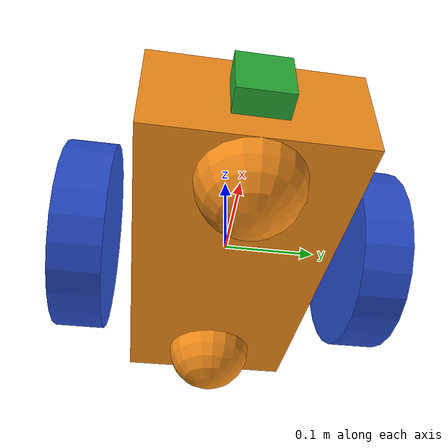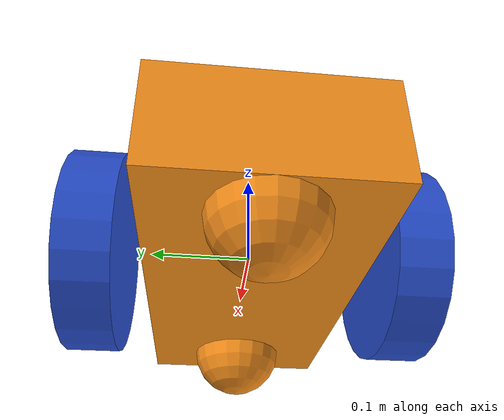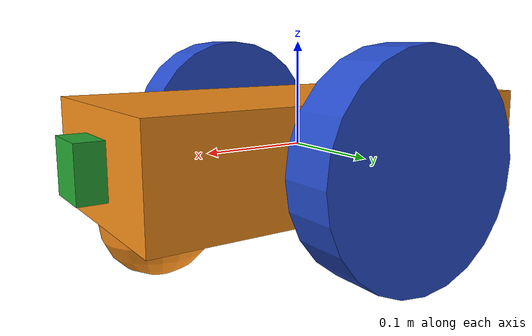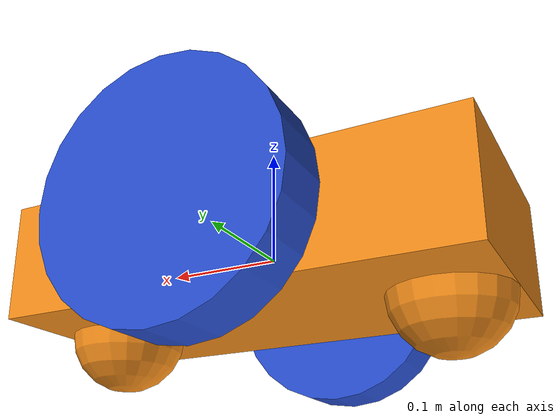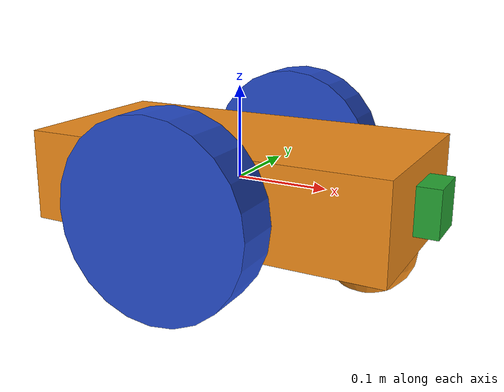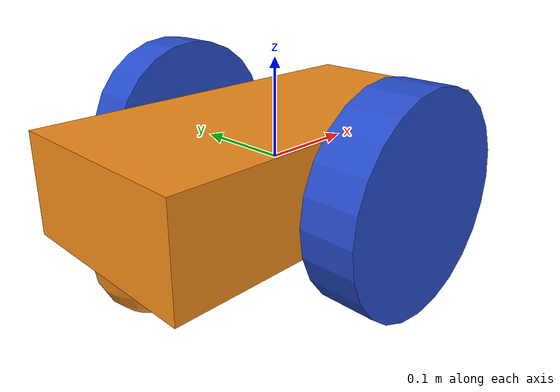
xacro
<?xml version="1.0" ?>
<robot name="zeus" xmlns:xacro="http://www.ros.org/wiki/xacro">

  <!-- Size of square 'camera' box -->
  <xacro:property name="cameraSize" value="0.05"/>
  <xacro:property name="cameraMass" value="0.1"/>

  <!-- Import files -->
  <xacro:include filename="$(find zeus_description)/urdf/materials.xacro" />
  <xacro:include filename="$(find zeus_description)/urdf/macros.xacro" />
  <xacro:include filename="$(find zeus_description)/urdf/zeus.gazebo" />

  <link name='chassis'>
    <pose>0 0 0.1 0 0 0</pose>

    <inertial>
      <mass value="15.0"/>
      <origin xyz="0.0 0 0.1" rpy=" 0 0 0"/>
      <inertia
          ixx="0.1" ixy="0" ixz="0"
          iyy="0.1" iyz="0"
          izz="0.1"
      />
    </inertial>

    <collision name='collision'>
      <geometry>
        <box size=".4 .2 .1"/>
      </geometry>
    </collision>

    <visual name='chassis_visual'>
      <origin xyz="0 0 0" rpy=" 0 0 0"/>
      <geometry>
        <box size=".4 .2 .1"/>
      </geometry>
    </visual>

    <collision name='caster_collision'>
      <origin xyz="-0.15 0 -0.05" rpy=" 0 0 0"/>
      <geometry>
        <sphere radius="0.05"/>
      </geometry>
      <surface>
        <friction>
          <ode>
            <mu>0</mu>
            <mu2>0</mu2>
            <slip1>1.0</slip1>
            <slip2>1.0</slip2>
          </ode>
        </friction>
      </surface>
    </collision>

    <visual name='caster_visual'>
      <origin xyz="-0.15 0 -0.05" rpy=" 0 0 0"/>
      <geometry>
        <sphere radius="0.05"/>
      </geometry>
    </visual>

    <collision name='caster_front_collision'>
      <origin xyz="0.15 0 -0.05" rpy=" 0 0 0"/>
      <geometry>
        <sphere radius="0.05"/>
      </geometry>
      <surface>
        <friction>
          <ode>
            <mu>0</mu>
            <mu2>0</mu2>
            <slip1>1.0</slip1>
            <slip2>1.0</slip2>
          </ode>
        </friction>
      </surface>
    </collision>

    <visual name='caster_front_visual'>
      <origin xyz="0.15 0 -0.05" rpy=" 0 0 0"/>
      <geometry>
        <sphere radius="0.05"/>
      </geometry>
    </visual>

  </link>

  <link name="left_wheel">
    <!--origin xyz="0.1 0.13 0.1" rpy="0 1.5707 1.5707"/-->
    <collision name="collision">
      <origin xyz="0 0 0" rpy="0 1.5707 1.5707"/>
      <geometry>
        <cylinder radius="0.1" length="0.05"/>
      </geometry>
    </collision>
    <visual name="left_wheel_visual">
      <origin xyz="0 0 0" rpy="0 1.5707 1.5707"/>
      <geometry>
        <cylinder radius="0.1" length="0.05"/>
      </geometry>
    </visual>
    <inertial>
      <origin xyz="0 0 0" rpy="0 1.5707 1.5707"/>
      <mass value="5"/>
      <inertia
        ixx=".1" ixy="0.0" ixz="0.0"
        iyy=".1" iyz="0.0"
        izz=".1"/>
    </inertial>
  </link>

  <link name="right_wheel">
    <!--origin xyz="0.1 -0.13 0.1" rpy="0 1.5707 1.5707"/-->
    <collision name="collision">
      <origin xyz="0 0 0" rpy="0 1.5707 1.5707"/>
      <geometry>
        <cylinder radius="0.1" length="0.05"/>
      </geometry>
    </collision>
    <visual name="right_wheel_visual">
      <origin xyz="0 0 0" rpy="0 1.5707 1.5707"/>
      <geometry>
        <cylinder radius="0.1" length="0.05"/>
      </geometry>
    </visual>
    <inertial>
      <origin xyz="0 0 0" rpy="0 1.5707 1.5707"/>
      <mass value="5"/>
      <inertia
        ixx=".1" ixy="0.0" ixz="0.0"
        iyy=".1" iyz="0.0"
        izz=".1"/>
    </inertial>
  </link>

  <joint type="continuous" name="left_wheel_hinge">
    <origin xyz="0 0.15 0" rpy="0 0 0"/>
    <!--origin xyz="0.1 0.13 0" rpy="0 1.5707 1.5707"/-->
    <child link="left_wheel"/>
    <parent link="chassis"/>
    <axis xyz="0 1 0" rpy="0 0 0"/>
    <limit effort="10000" velocity="1000"/>
    <joint_properties damping="1.0" friction="1.0"/>
  </joint>

  <joint type="continuous" name="right_wheel_hinge">
    <origin xyz="0 -0.15 0" rpy="0 0 0"/>
    <!--origin xyz="0.1 -0.13 0" rpy="0 1.5707 1.5707"/-->
    <child link="right_wheel"/>
    <parent link="chassis"/>
    <axis xyz="0 1 0" rpy="0 0 0"/>
    <limit effort="10000" velocity="1000"/>
    <joint_properties damping="1.0" friction="1.0"/>
  </joint>

  <link name="camera">
    <collision>
      <origin xyz="0 0 0" rpy="0 0 0"/>
      <geometry>
        <box size="${cameraSize} ${cameraSize} ${cameraSize}"/>
      </geometry>
    </collision>

    <visual>
      <origin xyz="0 0 0" rpy="0 0 0"/>
      <geometry>
        <box size="${cameraSize} ${cameraSize} ${cameraSize}"/>
      </geometry>
      <material name="green"/>
    </visual>

    <inertial>
      <mass value="${cameraMass}" />
      <origin xyz="0 0 0" rpy="0 0 0"/>
      <box_inertia m="${cameraMass}" x="${cameraSize}" y="${cameraSize}" z="${cameraSize}" />
      <inertia ixx="1e-6" ixy="0" ixz="0" iyy="1e-6" iyz="0" izz="1e-6" />
    </inertial>
  </link>

  <joint name="camera_joint" type="fixed">
    <axis xyz="0 1 0" />
    <origin xyz=".2 0 0" rpy="0 0 0"/>
    <parent link="chassis"/>
    <child link="camera"/>
  </joint>

</robot>

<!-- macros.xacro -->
<robot>
  <macro name="cylinder_inertia" params="m r h">
    <inertia  ixx="${m*(3*r*r+h*h)/12}" ixy = "0" ixz = "0"
      iyy="${m*(3*r*r+h*h)/12}" iyz = "0"
      izz="${m*r*r/2}"
    />
  </macro>

  <macro name="box_inertia" params="m x y z">
    <inertia  ixx="${m*(y*y+z*z)/12}" ixy = "0" ixz = "0"
      iyy="${m*(x*x+z*z)/12}" iyz = "0"
      izz="${m*(x*x+z*z)/12}"
    />
  </macro>

  <macro name="sphere_inertia" params="m r">
    <inertia  ixx="${2*m*r*r/5}" ixy = "0" ixz = "0"
      iyy="${2*m*r*r/5}" iyz = "0"
      izz="${2*m*r*r/5}"
    />
  </macro>

  <macro name="wheel" params="lr tY">

    <link name="${lr}_wheel">
      <collision>
        <origin xyz="0 0 0" rpy="0 ${PI/2} ${PI/2}" />
        <geometry>
          <cylinder length="${wheelWidth}" radius="${wheelRadius}"/>
        </geometry>
      </collision>

      <visual>
        <origin xyz="0 0 0" rpy="0 ${PI/2} ${PI/2}" />
        <geometry>
          <cylinder length="${wheelWidth}" radius="${wheelRadius}"/>
        </geometry>
        <material name="black"/>
      </visual>

      <inertial>
        <origin xyz="0 0 0" rpy="0 ${PI/2} ${PI/2}" />
        <mass value="${wheelMass}"/>
        <cylinder_inertia m="${wheelMass}" r="${wheelRadius}" h="${wheelWidth}"/>
      </inertial>
    </link>

    <gazebo reference="${lr}_wheel">
      <mu1 value="1.0"/>
      <mu2 value="1.0"/>
      <kp  value="10000000.0" />
      <kd  value="1.0" />
      <fdir1 value="1 0 0"/>
      <material>Gazebo/Black</material>
    </gazebo>

    <joint name="${lr}_wheel_hinge" type="continuous">
      <parent link="chassis"/>
      <child link="${lr}_wheel"/>
    <origin xyz="${-wheelPos+chassisLength/2} ${tY*wheelWidth/2+tY*chassisWidth/2} ${wheelRadius}" rpy="0 0 0" />
      <axis xyz="0 1 0" rpy="0 0 0" />
      <limit effort="10000" velocity="10000"/>
      <joint_properties damping="0.0" friction="0.0"/>
    </joint>

    <transmission name="${lr}_trans">
      <type>transmission_interface/SimpleTransmission</type>
      <joint name="${lr}_wheel_hinge">
        <hardwareInterface>EffortJointInterface</hardwareInterface>
      </joint>
      <actuator name="${lr}Motor">
        <hardwareInterface>EffortJointInterface</hardwareInterface>
        <mechanicalReduction>10</mechanicalReduction>
      </actuator>
    </transmission>

  </macro>

</robot>
